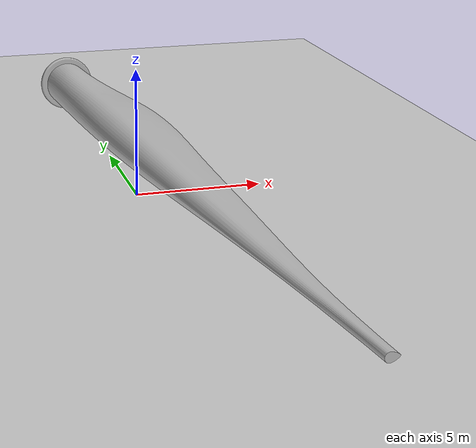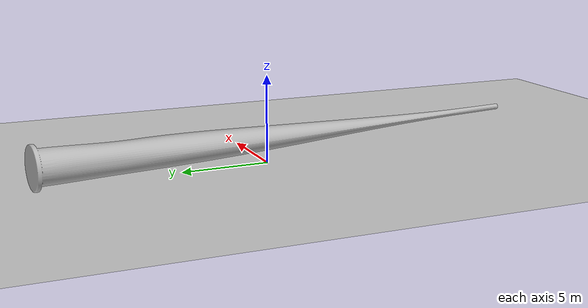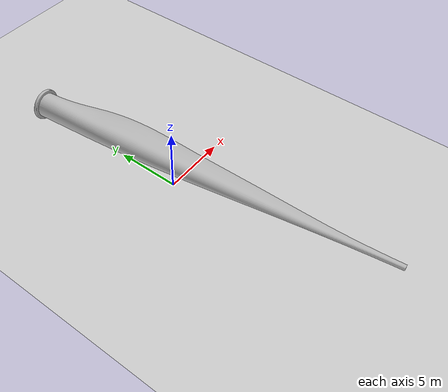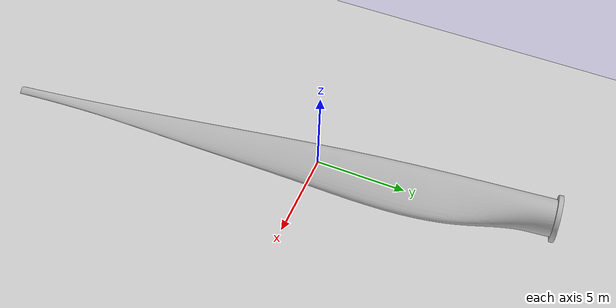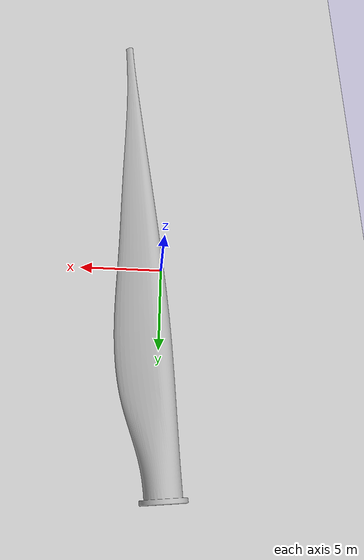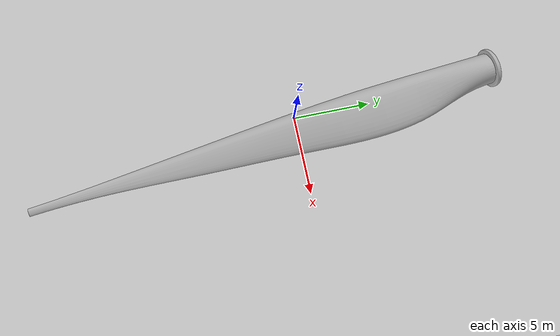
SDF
<sdf version="1.7">
 <world name="default">
  <light name="sun" type="directional">
   <pose>0 0 10 0 -0 0</pose>
   <diffuse>0.8 0.8 0.8 1</diffuse>
   <specular>0.2 0.2 0.2 1</specular>
   <attenuation>
    <range>1000</range>
    <constant>0.9</constant>
    <linear>0.01</linear>
    <quadratic>0.001</quadratic>
   </attenuation>
   <direction>-0.5 0.1 -0.9</direction>
   <spot><inner_angle>0</inner_angle><outer_angle>0</outer_angle><falloff>0</falloff></spot>
  </light>
  <model name="ground_plane">
   <static>1</static>
   <link name="link">
    <collision name="collision">
     <geometry><plane><normal>0 0 1</normal><size>100 100</size></plane></geometry>
     <surface>
      <contact><collide_bitmask>65535</collide_bitmask></contact>
      <friction><ode><mu>100</mu><mu2>50</mu2></ode></friction>
     </surface>
    </collision>
    <visual name="visual">
     <cast_shadows>0</cast_shadows>
     <geometry><plane><normal>0 0 1</normal><size>100 100</size></plane></geometry>
     <material>
      <script><uri>file://media/materials/scripts/gazebo.material</uri><name>Gazebo/Grey</name></script>
     </material>
    </visual>
   </link>
  </model>
  <gravity>0 0 -9.8</gravity>
  <magnetic_field>6e-06 2.3e-05 -4.2e-05</magnetic_field>
  <atmosphere type="adiabatic"/>
  <physics type="ode">
   <max_step_size>0.001</max_step_size>
   <real_time_factor>1</real_time_factor>
   <real_time_update_rate>1000</real_time_update_rate>
  </physics>
  <scene><ambient>0.4 0.4 0.4 1</ambient><background>0.7 0.7 0.7 1</background><shadows>1</shadows></scene>
  <spherical_coordinates>
   <surface_model>EARTH_WGS84</surface_model>
   <latitude_deg>0</latitude_deg>
   <longitude_deg>0</longitude_deg>
   <elevation>0</elevation>
   <heading_deg>0</heading_deg>
  </spherical_coordinates>
  <model name="WindTurbine_Blade">
   <link name="base_link">
    <inertial>
     <pose>2.2e-05 -0.125 -0.000265 0 -0 0</pose>
     <mass>1184.8</mass>
     <inertia>
      <ixx>452.989</ixx>
      <ixy>-1.58845e-05</ixy>
      <ixz>0.00263232</ixz>
      <iyy>893.855</iyy>
      <iyz>2.12594e-06</iyz>
      <izz>453.079</izz>
     </inertia>
    </inertial>
    <collision name="base_link_collision">
     <geometry>
      <mesh><scale>1 1 1</scale><uri>/root/spibot_ws/src/sipder_robot/meshes/WindTurbine_Blade.STL</uri></mesh>
     </geometry>
    </collision>
    <visual name="base_link_visual">
     <pose>1 13 0 0 -0 0</pose>
     <geometry>
      <mesh><scale>1 1 1</scale><uri>/root/spibot_ws/src/sipder_robot/meshes/WindTurbine_Blade.STL</uri></mesh>
     </geometry>
    </visual>
   </link>
   <pose>-0.034159 0.015065 1.23236 -0.001853 -0.016147 0.108183</pose>
  </model>
 </world>
</sdf>
